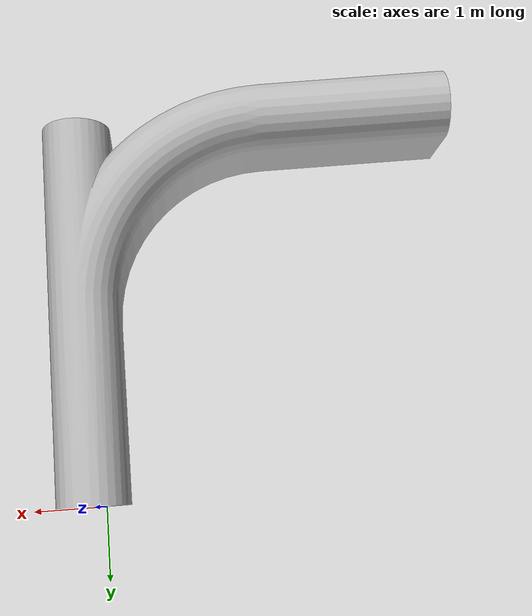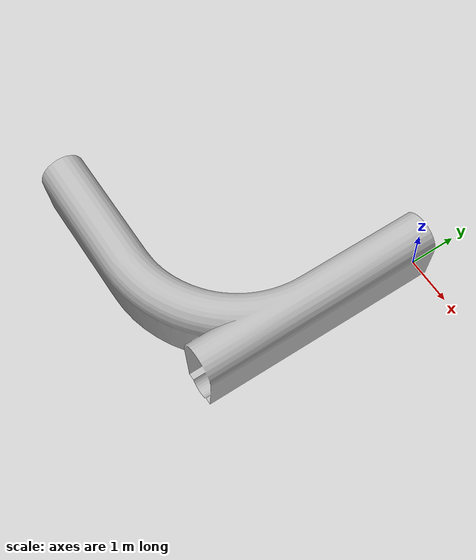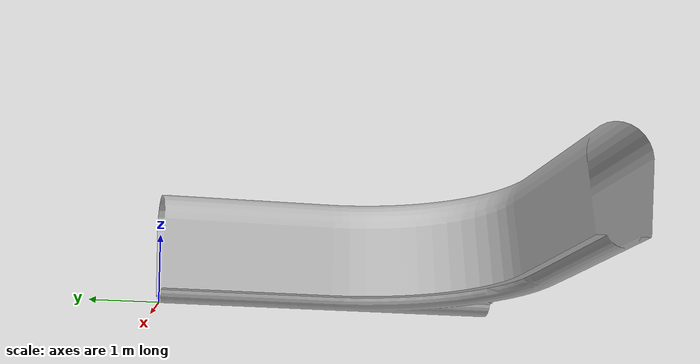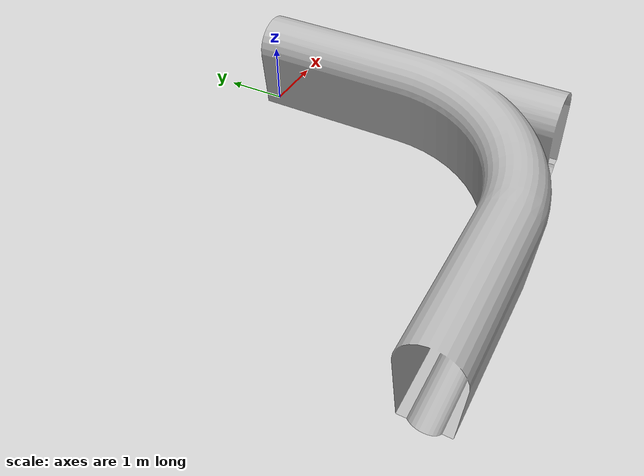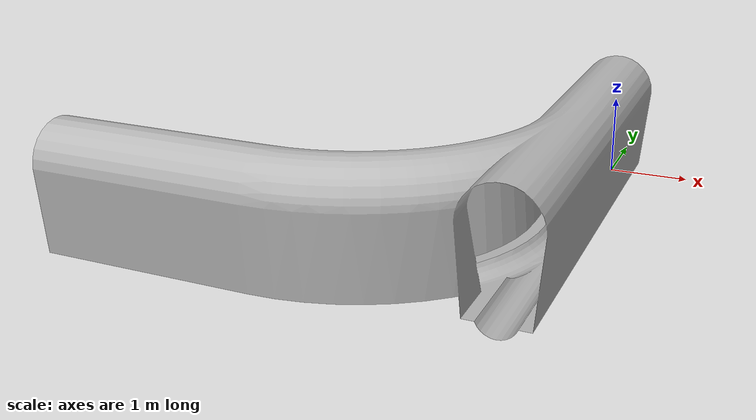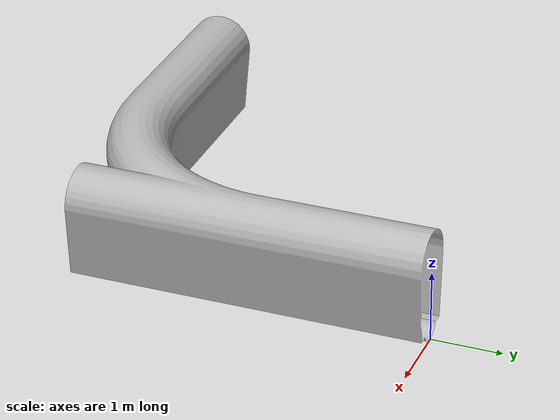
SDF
<?xml version="1.0" ?>
<sdf version="1.5">
  <model name="T114A_Y_5m">
    <static>true</static>

   <link name="link">
      <collision name="collision">
        <geometry>
          <mesh>
            <uri>model://T114A_Y_5m/meshes/T114A_Y_5m_5m.dae</uri>
          </mesh>
        </geometry>
      </collision>
      <visual name="visual">
        <geometry>
          <mesh>
            <uri>model://T114A_Y_5m/meshes/T114A_Y_5m_5m.dae</uri>
          </mesh>
        </geometry>
      </visual>
    </link>
  </model>
</sdf>
